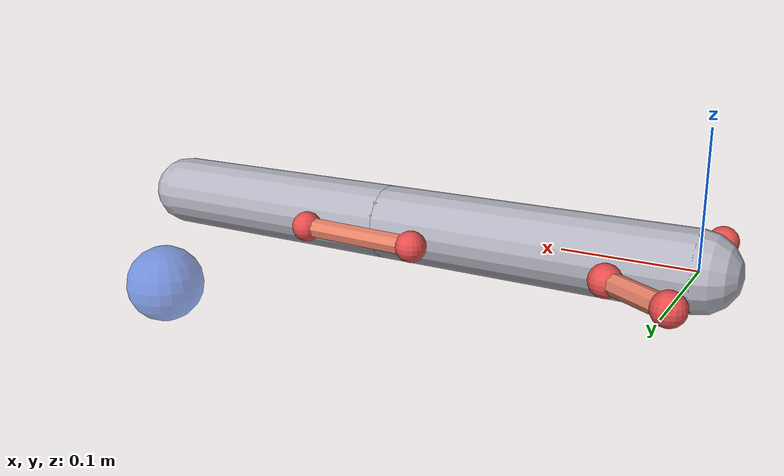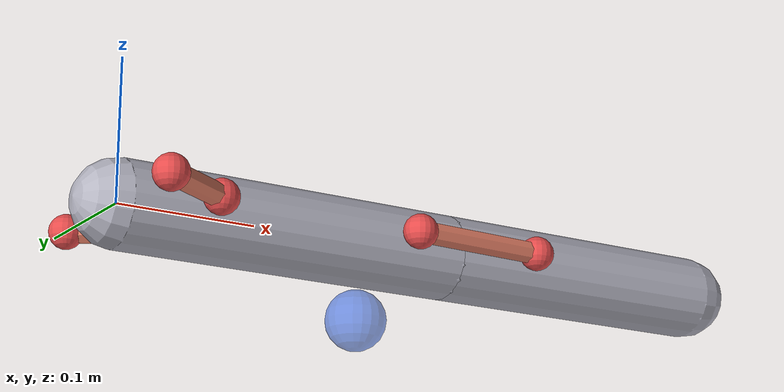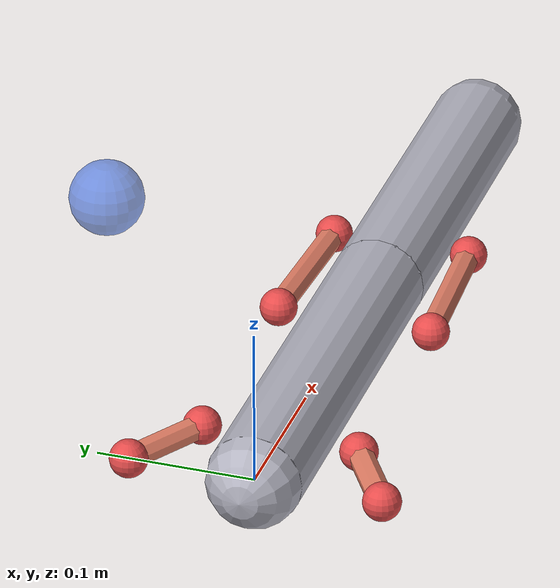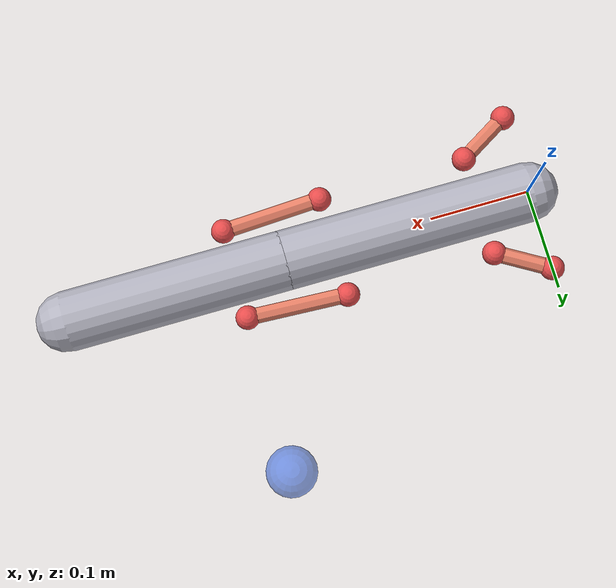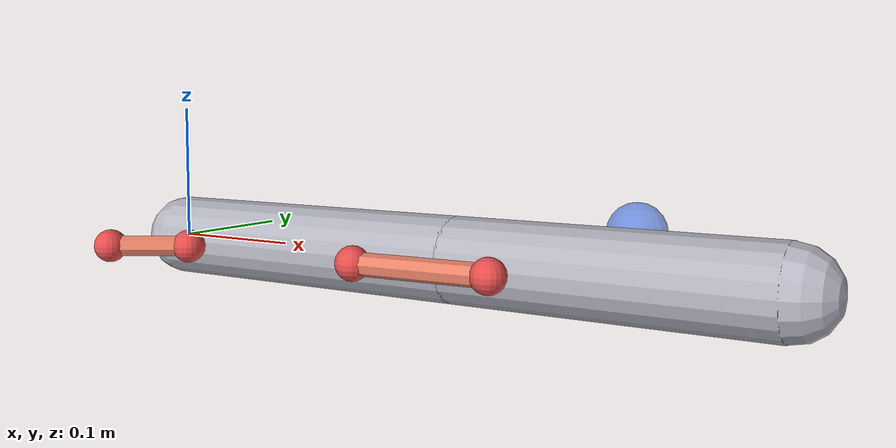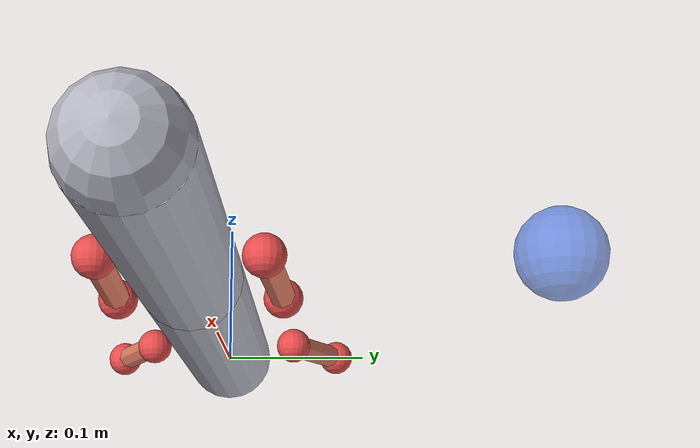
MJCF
<mujoco model="arm2_muscle">
  <!-- Planar 2-link arm actuated by 4 Hill-type muscles (agonist/antagonist per joint).
       Built for the world-model-as-prior study: small, fast-stepping, fully controlled. -->
  <compiler angle="radian" autolimits="true"/>
  <option timestep="0.002" integrator="implicitfast"/>

  <default>
    <joint type="hinge" axis="0 0 1" damping="0.2" limited="true"/>
    <geom type="capsule" size="0.03" rgba="0.7 0.7 0.75 1" density="800"/>
    <site size="0.012" rgba="0.9 0.3 0.3 1"/>
    <!-- Hill-type muscle defaults -->
    <muscle ctrllimited="true" ctrlrange="0 1"/>
    <tendon width="0.008" rgba="0.9 0.5 0.4 1"/>
  </default>

  <worldbody>
    <light pos="0 0 2"/>
    <geom name="floor" type="plane" pos="0 0 -1" size="2 2 0.1" rgba="0.3 0.3 0.35 1"/>

    <!-- shoulder mounting sites for muscle attachment (fixed to world) -->
    <site name="s_up"   pos="0 0.08 0"/>
    <site name="s_down" pos="0 -0.08 0"/>

    <body name="upper" pos="0 0 0">
      <joint name="shoulder" range="-2.0 2.0"/>
      <geom fromto="0 0 0 0.25 0 0"/>
      <!-- shoulder muscle insertion sites on the upper-arm -->
      <site name="u_up"   pos="0.05 0.05 0"/>
      <site name="u_down" pos="0.05 -0.05 0"/>
      <!-- elbow origin sites on the upper arm -->
      <site name="ue_up"   pos="0.20 0.05 0"/>
      <site name="ue_down" pos="0.20 -0.05 0"/>

      <body name="fore" pos="0.25 0 0">
        <joint name="elbow" range="-2.5 0.2"/>
        <geom fromto="0 0 0 0.22 0 0"/>
        <!-- elbow muscle insertion sites on the forearm -->
        <site name="f_up"   pos="0.05 0.045 0"/>
        <site name="f_down" pos="0.05 -0.045 0"/>
        <!-- fingertip -->
        <site name="tip" pos="0.22 0 0" size="0.02" rgba="0.2 0.8 0.3 1"/>
      </body>
    </body>

    <!-- reach target (mocap-free, set via qpos-independent site by moving this body in code) -->
    <body name="target" mocap="true" pos="0.3 0.2 0">
      <site name="target_site" pos="0 0 0" size="0.025" rgba="0.2 0.4 0.9 0.6"/>
    </body>
  </worldbody>

  <tendon>
    <spatial name="t_sh_flex">
      <site site="s_up"/><site site="u_up"/>
    </spatial>
    <spatial name="t_sh_ext">
      <site site="s_down"/><site site="u_down"/>
    </spatial>
    <spatial name="t_el_flex">
      <site site="ue_up"/><site site="f_up"/>
    </spatial>
    <spatial name="t_el_ext">
      <site site="ue_down"/><site site="f_down"/>
    </spatial>
  </tendon>

  <actuator>
    <muscle name="sh_flex" tendon="t_sh_flex"/>
    <muscle name="sh_ext"  tendon="t_sh_ext"/>
    <muscle name="el_flex" tendon="t_el_flex"/>
    <muscle name="el_ext"  tendon="t_el_ext"/>
  </actuator>
</mujoco>
